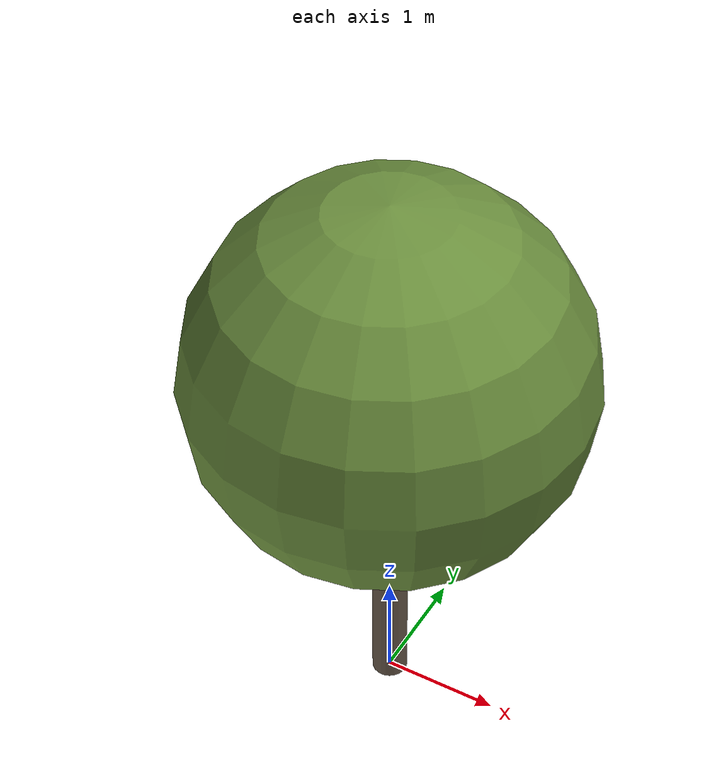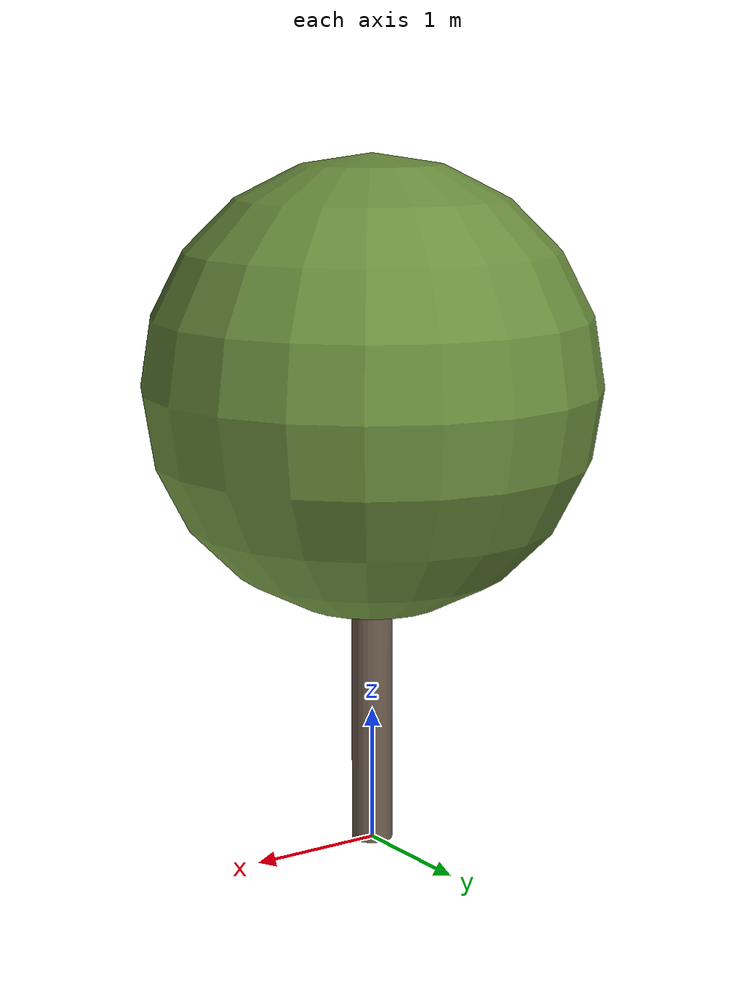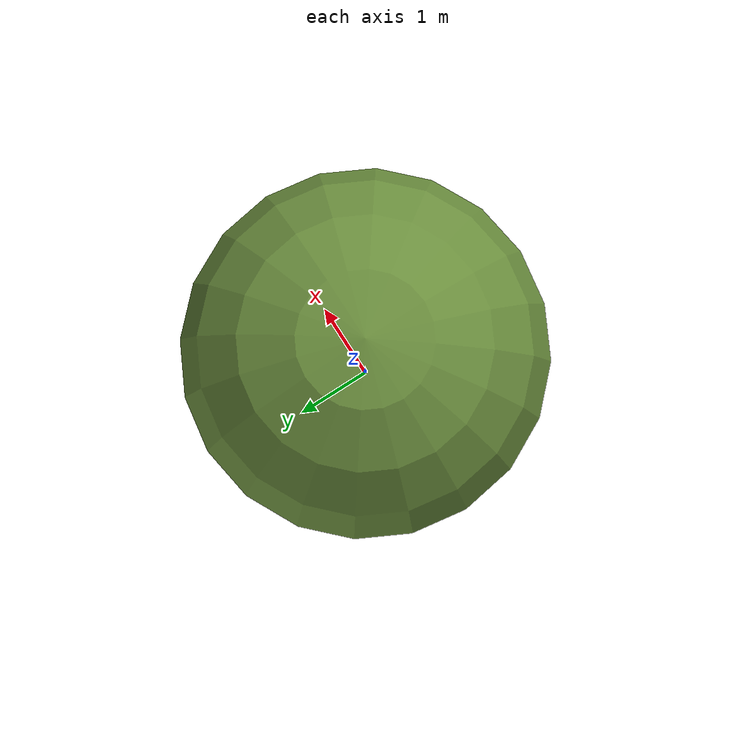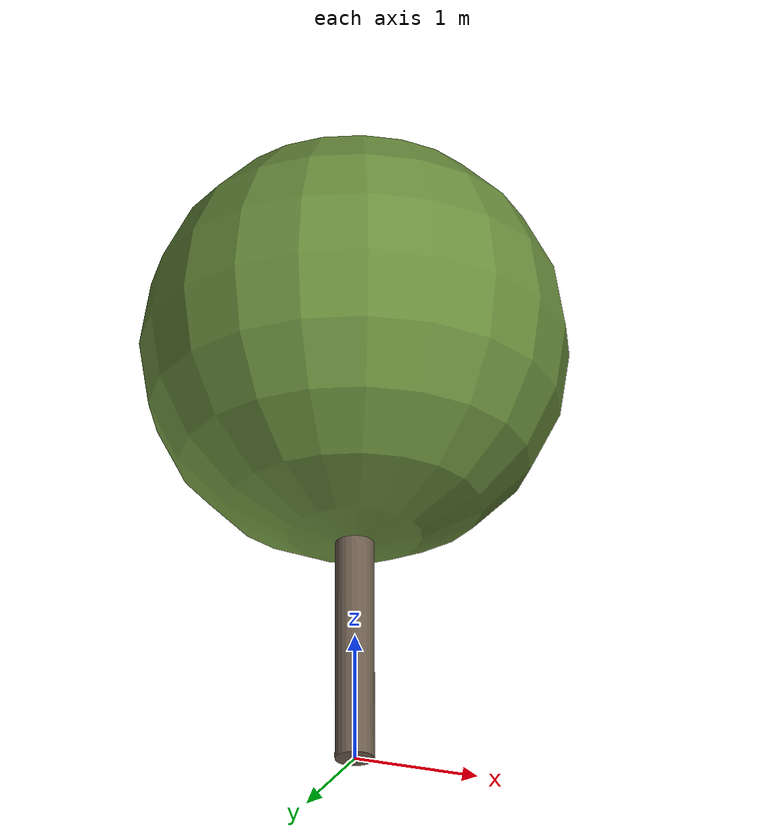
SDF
<?xml version="1.0" ?>
<sdf version="1.10">
  <model name="olivier_provence_06">
    <static>true</static>

    <!-- Tronc -->
    <link name="trunk">
      <pose>0 0 1.4609887385385245 0 0 0</pose>
      <visual name="trunk_visual">
        <geometry>
          <cylinder>
            <radius>0.1511946171865648</radius>
            <length>2.921977477077049</length>
          </cylinder>
        </geometry>
        <material>
          <ambient>0.42 0.36 0.30 1</ambient>
          <diffuse>0.42 0.36 0.30 1</diffuse>
          <specular>0.1 0.1 0.1 1</specular>
        </material>
      </visual>
      <collision name="trunk_collision">
        <geometry>
          <cylinder>
            <radius>0.1511946171865648</radius>
            <length>2.921977477077049</length>
          </cylinder>
        </geometry>
      </collision>
    </link>

    <!-- Feuillage -->
    <link name="crown">
      <pose>0 0 3.4274904111817 0 0 0</pose>
      <visual name="crown_visual">
        <geometry>
          <sphere>
              <radius>1.685043113682169</radius>
            </sphere>
        </geometry>
        <material>
          <ambient>0.42 0.56 0.24 1</ambient>
          <diffuse>0.42 0.56 0.24 1</diffuse>
          <specular>0.1 0.1 0.1 1</specular>
        </material>
      </visual>
      <collision name="crown_collision">
        <geometry>
          <sphere>
            <radius>1.3480344909457354</radius>
          </sphere>
        </geometry>
      </collision>
    </link>

    <!-- Joint tronc-feuillage -->
    <joint name="trunk_crown_joint" type="fixed">
      <parent>trunk</parent>
      <child>crown</child>
    </joint>

  </model>
</sdf>
